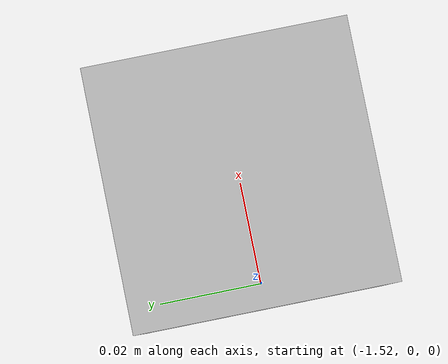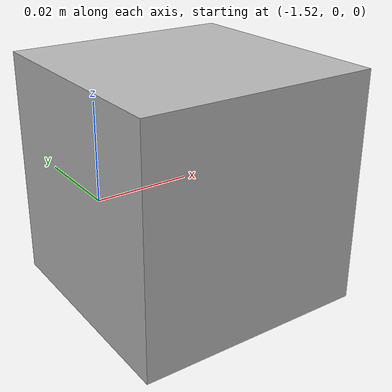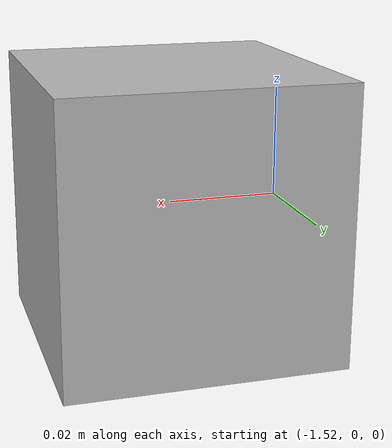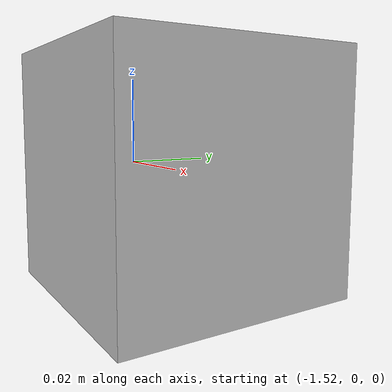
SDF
<?xml version='1.0'?>
<sdf version='1.6'>
<model name="my_sensor">
      <pose>-1.5 0.0 0.0 0.0 0.0 0.0</pose>
      <link name="ray_link">
        <visual name="visual_box">
          <geometry>
            <box>
              <size>0.05 0.05 0.05</size>
            </box>
          </geometry>
        </visual>
        <collision name="collision_box">
          <geometry>
            <box>
              <size>0.05 0.05 0.05</size>
            </box>
          </geometry>
          <laser_retro>100.0</laser_retro>
        </collision>

      </link>
    </model>
</sdf>
